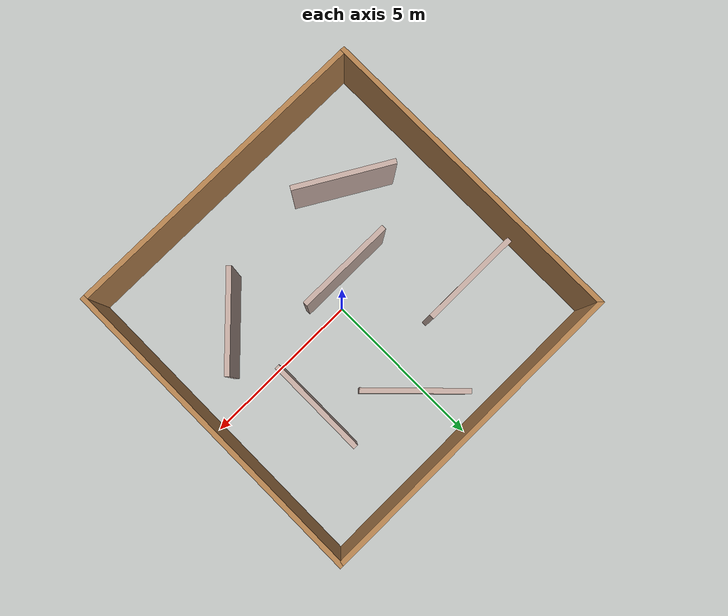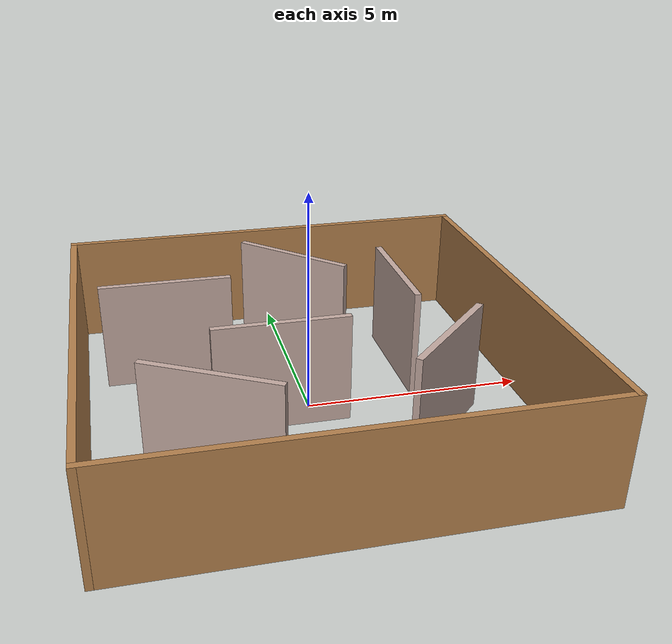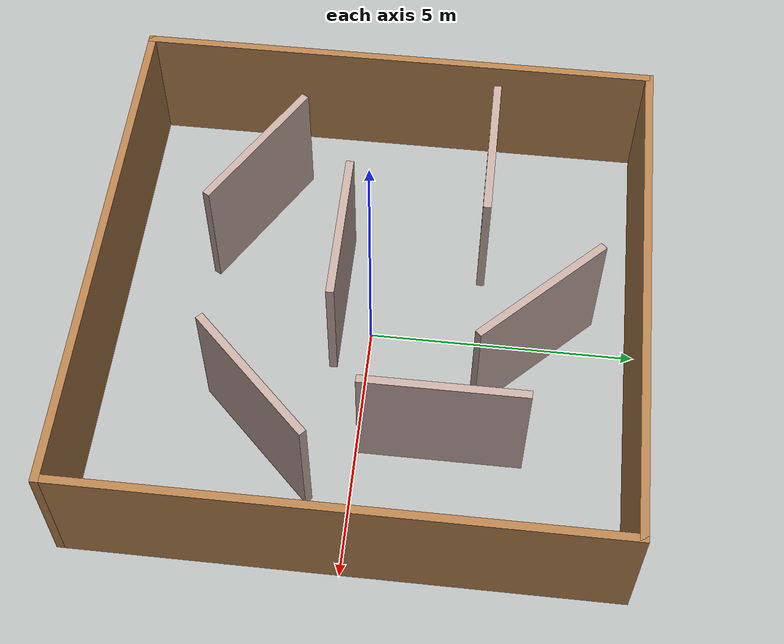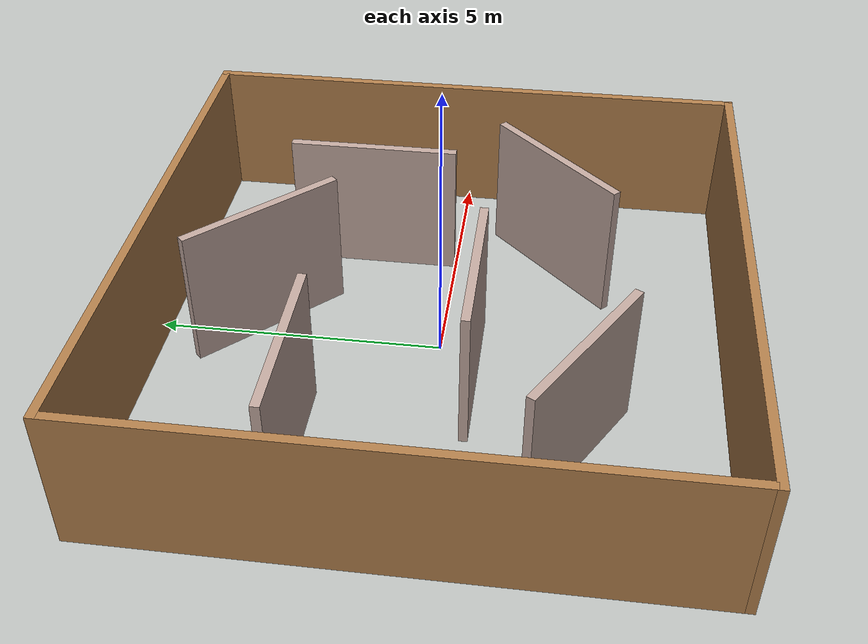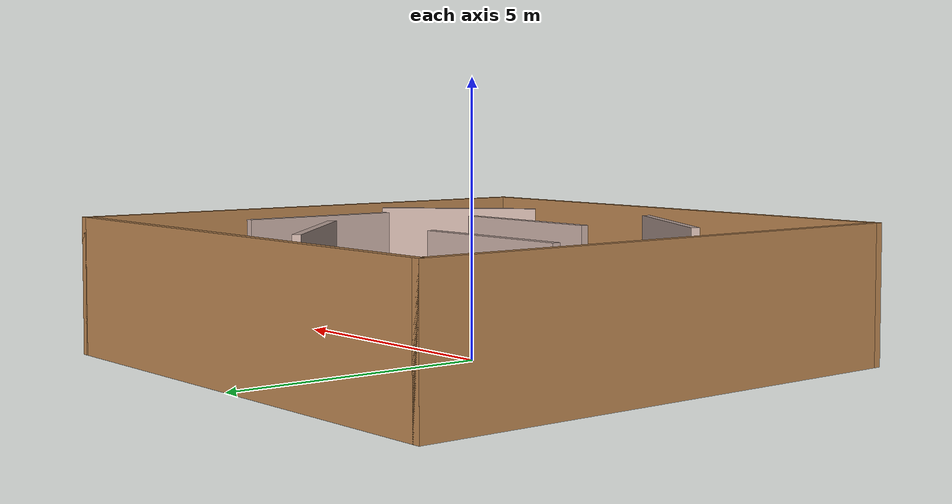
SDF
<?xml version='1.0'?>
<sdf version='1.6'>
  <model name='MazebyMe'>
    <link name='Wall_11'>
      <pose frame=''>0 -4.925 0 0 -0 3.14159</pose>
      <self_collide>0</self_collide>
      <enable_wind>0</enable_wind>
      <kinematic>0</kinematic>
      <visual name='Wall_11_Visual'>
        <pose frame=''>0 0 1.25 0 -0 0</pose>
        <geometry>
          <box>
            <size>10 0.15 2.5</size>
          </box>
        </geometry>
        <material>
          <script>
            <uri>file://media/materials/scripts/gazebo.material</uri>
            <name>Gazebo/Wood</name>
          </script>
          <ambient>1 1 1 1</ambient>
          <shader type='pixel'/>
        </material>
        <meta>
          <layer>0</layer>
        </meta>
        <transparency>0</transparency>
        <cast_shadows>1</cast_shadows>
      </visual>
      <collision name='Wall_11_Collision'>
        <laser_retro>0</laser_retro>
        <max_contacts>10</max_contacts>
        <pose frame=''>0 0 1.25 0 -0 0</pose>
        <geometry>
          <box>
            <size>10 0.15 2.5</size>
          </box>
        </geometry>
        <surface>
          <friction>
            <ode>
              <mu>1</mu>
              <mu2>1</mu2>
              <fdir1>0 0 0</fdir1>
              <slip1>0</slip1>
              <slip2>0</slip2>
            </ode>
            <torsional>
              <coefficient>1</coefficient>
              <patch_radius>0</patch_radius>
              <surface_radius>0</surface_radius>
              <use_patch_radius>1</use_patch_radius>
              <ode>
                <slip>0</slip>
              </ode>
            </torsional>
          </friction>
          <bounce>
            <restitution_coefficient>0</restitution_coefficient>
            <threshold>1e+06</threshold>
          </bounce>
          <contact>
            <collide_without_contact>0</collide_without_contact>
            <collide_without_contact_bitmask>1</collide_without_contact_bitmask>
            <collide_bitmask>1</collide_bitmask>
            <ode>
              <soft_cfm>0</soft_cfm>
              <soft_erp>0.2</soft_erp>
              <kp>1e+13</kp>
              <kd>1</kd>
              <max_vel>0.01</max_vel>
              <min_depth>0</min_depth>
            </ode>
            <bullet>
              <split_impulse>1</split_impulse>
              <split_impulse_penetration_threshold>-0.01</split_impulse_penetration_threshold>
              <soft_cfm>0</soft_cfm>
              <soft_erp>0.2</soft_erp>
              <kp>1e+13</kp>
              <kd>1</kd>
            </bullet>
          </contact>
        </surface>
      </collision>
    </link>
    <link name='Wall_12'>
      <pose frame=''>-4.925 0 0 0 -0 1.5708</pose>
      <self_collide>0</self_collide>
      <enable_wind>0</enable_wind>
      <kinematic>0</kinematic>
      <visual name='Wall_12_Visual'>
        <pose frame=''>0 0 1.25 0 -0 0</pose>
        <geometry>
          <box>
            <size>10 0.15 2.5</size>
          </box>
        </geometry>
        <material>
          <script>
            <uri>file://media/materials/scripts/gazebo.material</uri>
            <name>Gazebo/Wood</name>
          </script>
          <ambient>1 1 1 1</ambient>
          <shader type='pixel'/>
        </material>
        <meta>
          <layer>0</layer>
        </meta>
        <transparency>0</transparency>
        <cast_shadows>1</cast_shadows>
      </visual>
      <collision name='Wall_12_Collision'>
        <laser_retro>0</laser_retro>
        <max_contacts>10</max_contacts>
        <pose frame=''>0 0 1.25 0 -0 0</pose>
        <geometry>
          <box>
            <size>10 0.15 2.5</size>
          </box>
        </geometry>
        <surface>
          <friction>
            <ode>
              <mu>1</mu>
              <mu2>1</mu2>
              <fdir1>0 0 0</fdir1>
              <slip1>0</slip1>
              <slip2>0</slip2>
            </ode>
            <torsional>
              <coefficient>1</coefficient>
              <patch_radius>0</patch_radius>
              <surface_radius>0</surface_radius>
              <use_patch_radius>1</use_patch_radius>
              <ode>
                <slip>0</slip>
              </ode>
            </torsional>
          </friction>
          <bounce>
            <restitution_coefficient>0</restitution_coefficient>
            <threshold>1e+06</threshold>
          </bounce>
          <contact>
            <collide_without_contact>0</collide_without_contact>
            <collide_without_contact_bitmask>1</collide_without_contact_bitmask>
            <collide_bitmask>1</collide_bitmask>
            <ode>
              <soft_cfm>0</soft_cfm>
              <soft_erp>0.2</soft_erp>
              <kp>1e+13</kp>
              <kd>1</kd>
              <max_vel>0.01</max_vel>
              <min_depth>0</min_depth>
            </ode>
            <bullet>
              <split_impulse>1</split_impulse>
              <split_impulse_penetration_threshold>-0.01</split_impulse_penetration_threshold>
              <soft_cfm>0</soft_cfm>
              <soft_erp>0.2</soft_erp>
              <kp>1e+13</kp>
              <kd>1</kd>
            </bullet>
          </contact>
        </surface>
      </collision>
    </link>
    <link name='Wall_14'>
      <pose frame=''>-2.89619 1.99801 0 0 -0 0</pose>
      <self_collide>0</self_collide>
      <enable_wind>0</enable_wind>
      <kinematic>0</kinematic>
      <visual name='Wall_14_Visual'>
        <pose frame=''>0 0 1.25 0 -0 0</pose>
        <geometry>
          <box>
            <size>3 0.15 2.5</size>
          </box>
        </geometry>
        <material>
          <script>
            <uri>file://media/materials/scripts/gazebo.material</uri>
            <name>Gazebo/Grey</name>
          </script>
          <ambient>0.760784 0.662745 0.627451 1</ambient>
          <shader type='pixel'/>
        </material>
        <meta>
          <layer>0</layer>
        </meta>
        <transparency>0</transparency>
        <cast_shadows>1</cast_shadows>
      </visual>
      <collision name='Wall_14_Collision'>
        <laser_retro>0</laser_retro>
        <max_contacts>10</max_contacts>
        <pose frame=''>0 0 1.25 0 -0 0</pose>
        <geometry>
          <box>
            <size>3 0.15 2.5</size>
          </box>
        </geometry>
        <surface>
          <friction>
            <ode>
              <mu>1</mu>
              <mu2>1</mu2>
              <fdir1>0 0 0</fdir1>
              <slip1>0</slip1>
              <slip2>0</slip2>
            </ode>
            <torsional>
              <coefficient>1</coefficient>
              <patch_radius>0</patch_radius>
              <surface_radius>0</surface_radius>
              <use_patch_radius>1</use_patch_radius>
              <ode>
                <slip>0</slip>
              </ode>
            </torsional>
          </friction>
          <bounce>
            <restitution_coefficient>0</restitution_coefficient>
            <threshold>1e+06</threshold>
          </bounce>
          <contact>
            <collide_without_contact>0</collide_without_contact>
            <collide_without_contact_bitmask>1</collide_without_contact_bitmask>
            <collide_bitmask>1</collide_bitmask>
            <ode>
              <soft_cfm>0</soft_cfm>
              <soft_erp>0.2</soft_erp>
              <kp>1e+13</kp>
              <kd>1</kd>
              <max_vel>0.01</max_vel>
              <min_depth>0</min_depth>
            </ode>
            <bullet>
              <split_impulse>1</split_impulse>
              <split_impulse_penetration_threshold>-0.01</split_impulse_penetration_threshold>
              <soft_cfm>0</soft_cfm>
              <soft_erp>0.2</soft_erp>
              <kp>1e+13</kp>
              <kd>1</kd>
            </bullet>
          </contact>
        </surface>
      </collision>
    </link>
    <link name='Wall_16'>
      <pose frame=''>2.48847 1.53062 0 0 0 -1.5708</pose>
      <self_collide>0</self_collide>
      <enable_wind>0</enable_wind>
      <kinematic>0</kinematic>
      <visual name='Wall_16_Visual'>
        <pose frame=''>0 0 1.25 0 -0 0</pose>
        <geometry>
          <box>
            <size>3 0.15 2.5</size>
          </box>
        </geometry>
        <material>
          <script>
            <uri>file://media/materials/scripts/gazebo.material</uri>
            <name>Gazebo/Grey</name>
          </script>
          <ambient>0.760784 0.662745 0.627451 1</ambient>
          <shader type='pixel'/>
        </material>
        <meta>
          <layer>0</layer>
        </meta>
        <transparency>0</transparency>
        <cast_shadows>1</cast_shadows>
      </visual>
      <collision name='Wall_16_Collision'>
        <laser_retro>0</laser_retro>
        <max_contacts>10</max_contacts>
        <pose frame=''>0 0 1.25 0 -0 0</pose>
        <geometry>
          <box>
            <size>3 0.15 2.5</size>
          </box>
        </geometry>
        <surface>
          <friction>
            <ode>
              <mu>1</mu>
              <mu2>1</mu2>
              <fdir1>0 0 0</fdir1>
              <slip1>0</slip1>
              <slip2>0</slip2>
            </ode>
            <torsional>
              <coefficient>1</coefficient>
              <patch_radius>0</patch_radius>
              <surface_radius>0</surface_radius>
              <use_patch_radius>1</use_patch_radius>
              <ode>
                <slip>0</slip>
              </ode>
            </torsional>
          </friction>
          <bounce>
            <restitution_coefficient>0</restitution_coefficient>
            <threshold>1e+06</threshold>
          </bounce>
          <contact>
            <collide_without_contact>0</collide_without_contact>
            <collide_without_contact_bitmask>1</collide_without_contact_bitmask>
            <collide_bitmask>1</collide_bitmask>
            <ode>
              <soft_cfm>0</soft_cfm>
              <soft_erp>0.2</soft_erp>
              <kp>1e+13</kp>
              <kd>1</kd>
              <max_vel>0.01</max_vel>
              <min_depth>0</min_depth>
            </ode>
            <bullet>
              <split_impulse>1</split_impulse>
              <split_impulse_penetration_threshold>-0.01</split_impulse_penetration_threshold>
              <soft_cfm>0</soft_cfm>
              <soft_erp>0.2</soft_erp>
              <kp>1e+13</kp>
              <kd>1</kd>
            </bullet>
          </contact>
        </surface>
      </collision>
    </link>
    <link name='Wall_18'>
      <pose frame=''>-0.714969 -0.635407 0 0 -0 0</pose>
      <self_collide>0</self_collide>
      <enable_wind>0</enable_wind>
      <kinematic>0</kinematic>
      <visual name='Wall_18_Visual'>
        <pose frame=''>0 0 1.25 0 -0 0</pose>
        <geometry>
          <box>
            <size>3 0.15 2.5</size>
          </box>
        </geometry>
        <material>
          <script>
            <uri>file://media/materials/scripts/gazebo.material</uri>
            <name>Gazebo/Grey</name>
          </script>
          <ambient>0.760784 0.662745 0.627451 1</ambient>
          <shader type='pixel'/>
        </material>
        <meta>
          <layer>0</layer>
        </meta>
        <transparency>0</transparency>
        <cast_shadows>1</cast_shadows>
      </visual>
      <collision name='Wall_18_Collision'>
        <laser_retro>0</laser_retro>
        <max_contacts>10</max_contacts>
        <pose frame=''>0 0 1.25 0 -0 0</pose>
        <geometry>
          <box>
            <size>3 0.15 2.5</size>
          </box>
        </geometry>
        <surface>
          <friction>
            <ode>
              <mu>1</mu>
              <mu2>1</mu2>
              <fdir1>0 0 0</fdir1>
              <slip1>0</slip1>
              <slip2>0</slip2>
            </ode>
            <torsional>
              <coefficient>1</coefficient>
              <patch_radius>0</patch_radius>
              <surface_radius>0</surface_radius>
              <use_patch_radius>1</use_patch_radius>
              <ode>
                <slip>0</slip>
              </ode>
            </torsional>
          </friction>
          <bounce>
            <restitution_coefficient>0</restitution_coefficient>
            <threshold>1e+06</threshold>
          </bounce>
          <contact>
            <collide_without_contact>0</collide_without_contact>
            <collide_without_contact_bitmask>1</collide_without_contact_bitmask>
            <collide_bitmask>1</collide_bitmask>
            <ode>
              <soft_cfm>0</soft_cfm>
              <soft_erp>0.2</soft_erp>
              <kp>1e+13</kp>
              <kd>1</kd>
              <max_vel>0.01</max_vel>
              <min_depth>0</min_depth>
            </ode>
            <bullet>
              <split_impulse>1</split_impulse>
              <split_impulse_penetration_threshold>-0.01</split_impulse_penetration_threshold>
              <soft_cfm>0</soft_cfm>
              <soft_erp>0.2</soft_erp>
              <kp>1e+13</kp>
              <kd>1</kd>
            </bullet>
          </contact>
        </surface>
      </collision>
    </link>
    <link name='Wall_20'>
      <pose frame=''>-2.44869 -2.43852 0 0 0 -0.523599</pose>
      <self_collide>0</self_collide>
      <enable_wind>0</enable_wind>
      <kinematic>0</kinematic>
      <visual name='Wall_20_Visual'>
        <pose frame=''>0 0 1.25 0 -0 0</pose>
        <geometry>
          <box>
            <size>3 0.15 2.5</size>
          </box>
        </geometry>
        <material>
          <script>
            <uri>file://media/materials/scripts/gazebo.material</uri>
            <name>Gazebo/Grey</name>
          </script>
          <ambient>0.760784 0.662745 0.627451 1</ambient>
          <shader type='pixel'/>
        </material>
        <meta>
          <layer>0</layer>
        </meta>
        <transparency>0</transparency>
        <cast_shadows>1</cast_shadows>
      </visual>
      <collision name='Wall_20_Collision'>
        <laser_retro>0</laser_retro>
        <max_contacts>10</max_contacts>
        <pose frame=''>0 0 1.25 0 -0 0</pose>
        <geometry>
          <box>
            <size>3 0.15 2.5</size>
          </box>
        </geometry>
        <surface>
          <friction>
            <ode>
              <mu>1</mu>
              <mu2>1</mu2>
              <fdir1>0 0 0</fdir1>
              <slip1>0</slip1>
              <slip2>0</slip2>
            </ode>
            <torsional>
              <coefficient>1</coefficient>
              <patch_radius>0</patch_radius>
              <surface_radius>0</surface_radius>
              <use_patch_radius>1</use_patch_radius>
              <ode>
                <slip>0</slip>
              </ode>
            </torsional>
          </friction>
          <bounce>
            <restitution_coefficient>0</restitution_coefficient>
            <threshold>1e+06</threshold>
          </bounce>
          <contact>
            <collide_without_contact>0</collide_without_contact>
            <collide_without_contact_bitmask>1</collide_without_contact_bitmask>
            <collide_bitmask>1</collide_bitmask>
            <ode>
              <soft_cfm>0</soft_cfm>
              <soft_erp>0.2</soft_erp>
              <kp>1e+13</kp>
              <kd>1</kd>
              <max_vel>0.01</max_vel>
              <min_depth>0</min_depth>
            </ode>
            <bullet>
              <split_impulse>1</split_impulse>
              <split_impulse_penetration_threshold>-0.01</split_impulse_penetration_threshold>
              <soft_cfm>0</soft_cfm>
              <soft_erp>0.2</soft_erp>
              <kp>1e+13</kp>
              <kd>1</kd>
            </bullet>
          </contact>
        </surface>
      </collision>
    </link>
    <link name='Wall_22'>
      <pose frame=''>2.57183 -1.77595 0 0 0 -2.35619</pose>
      <self_collide>0</self_collide>
      <enable_wind>0</enable_wind>
      <kinematic>0</kinematic>
      <visual name='Wall_22_Visual'>
        <pose frame=''>0 0 1.25 0 -0 0</pose>
        <geometry>
          <box>
            <size>3 0.15 2.5</size>
          </box>
        </geometry>
        <material>
          <script>
            <uri>file://media/materials/scripts/gazebo.material</uri>
            <name>Gazebo/Grey</name>
          </script>
          <ambient>0.760784 0.662745 0.627451 1</ambient>
          <shader type='pixel'/>
        </material>
        <meta>
          <layer>0</layer>
        </meta>
        <transparency>0</transparency>
        <cast_shadows>1</cast_shadows>
      </visual>
      <collision name='Wall_22_Collision'>
        <laser_retro>0</laser_retro>
        <max_contacts>10</max_contacts>
        <pose frame=''>0 0 1.25 0 -0 0</pose>
        <geometry>
          <box>
            <size>3 0.15 2.5</size>
          </box>
        </geometry>
        <surface>
          <friction>
            <ode>
              <mu>1</mu>
              <mu2>1</mu2>
              <fdir1>0 0 0</fdir1>
              <slip1>0</slip1>
              <slip2>0</slip2>
            </ode>
            <torsional>
              <coefficient>1</coefficient>
              <patch_radius>0</patch_radius>
              <surface_radius>0</surface_radius>
              <use_patch_radius>1</use_patch_radius>
              <ode>
                <slip>0</slip>
              </ode>
            </torsional>
          </friction>
          <bounce>
            <restitution_coefficient>0</restitution_coefficient>
            <threshold>1e+06</threshold>
          </bounce>
          <contact>
            <collide_without_contact>0</collide_without_contact>
            <collide_without_contact_bitmask>1</collide_without_contact_bitmask>
            <collide_bitmask>1</collide_bitmask>
            <ode>
              <soft_cfm>0</soft_cfm>
              <soft_erp>0.2</soft_erp>
              <kp>1e+13</kp>
              <kd>1</kd>
              <max_vel>0.01</max_vel>
              <min_depth>0</min_depth>
            </ode>
            <bullet>
              <split_impulse>1</split_impulse>
              <split_impulse_penetration_threshold>-0.01</split_impulse_penetration_threshold>
              <soft_cfm>0</soft_cfm>
              <soft_erp>0.2</soft_erp>
              <kp>1e+13</kp>
              <kd>1</kd>
            </bullet>
          </contact>
        </surface>
      </collision>
    </link>
    <link name='Wall_24'>
      <pose frame=''>0.304069 3.0918 0 0 0 -0.785398</pose>
      <self_collide>0</self_collide>
      <enable_wind>0</enable_wind>
      <kinematic>0</kinematic>
      <visual name='Wall_24_Visual'>
        <pose frame=''>0 0 1.25 0 -0 0</pose>
        <geometry>
          <box>
            <size>3 0.15 2.5</size>
          </box>
        </geometry>
        <material>
          <script>
            <uri>file://media/materials/scripts/gazebo.material</uri>
            <name>Gazebo/Grey</name>
          </script>
          <ambient>0.760784 0.662745 0.627451 1</ambient>
          <shader type='pixel'/>
        </material>
        <meta>
          <layer>0</layer>
        </meta>
        <transparency>0</transparency>
        <cast_shadows>1</cast_shadows>
      </visual>
      <collision name='Wall_24_Collision'>
        <laser_retro>0</laser_retro>
        <max_contacts>10</max_contacts>
        <pose frame=''>0 0 1.25 0 -0 0</pose>
        <geometry>
          <box>
            <size>3 0.15 2.5</size>
          </box>
        </geometry>
        <surface>
          <friction>
            <ode>
              <mu>1</mu>
              <mu2>1</mu2>
              <fdir1>0 0 0</fdir1>
              <slip1>0</slip1>
              <slip2>0</slip2>
            </ode>
            <torsional>
              <coefficient>1</coefficient>
              <patch_radius>0</patch_radius>
              <surface_radius>0</surface_radius>
              <use_patch_radius>1</use_patch_radius>
              <ode>
                <slip>0</slip>
              </ode>
            </torsional>
          </friction>
          <bounce>
            <restitution_coefficient>0</restitution_coefficient>
            <threshold>1e+06</threshold>
          </bounce>
          <contact>
            <collide_without_contact>0</collide_without_contact>
            <collide_without_contact_bitmask>1</collide_without_contact_bitmask>
            <collide_bitmask>1</collide_bitmask>
            <ode>
              <soft_cfm>0</soft_cfm>
              <soft_erp>0.2</soft_erp>
              <kp>1e+13</kp>
              <kd>1</kd>
              <max_vel>0.01</max_vel>
              <min_depth>0</min_depth>
            </ode>
            <bullet>
              <split_impulse>1</split_impulse>
              <split_impulse_penetration_threshold>-0.01</split_impulse_penetration_threshold>
              <soft_cfm>0</soft_cfm>
              <soft_erp>0.2</soft_erp>
              <kp>1e+13</kp>
              <kd>1</kd>
            </bullet>
          </contact>
        </surface>
      </collision>
    </link>
    <link name='Wall_8'>
      <pose frame=''>0 4.925 0 0 -0 0</pose>
      <self_collide>0</self_collide>
      <enable_wind>0</enable_wind>
      <kinematic>0</kinematic>
      <visual name='Wall_8_Visual'>
        <pose frame=''>0 0 1.25 0 -0 0</pose>
        <geometry>
          <box>
            <size>10 0.15 2.5</size>
          </box>
        </geometry>
        <material>
          <script>
            <uri>file://media/materials/scripts/gazebo.material</uri>
            <name>Gazebo/Wood</name>
          </script>
          <ambient>1 1 1 1</ambient>
          <shader type='pixel'/>
        </material>
        <meta>
          <layer>0</layer>
        </meta>
        <transparency>0</transparency>
        <cast_shadows>1</cast_shadows>
      </visual>
      <collision name='Wall_8_Collision'>
        <laser_retro>0</laser_retro>
        <max_contacts>10</max_contacts>
        <pose frame=''>0 0 1.25 0 -0 0</pose>
        <geometry>
          <box>
            <size>10 0.15 2.5</size>
          </box>
        </geometry>
        <surface>
          <friction>
            <ode>
              <mu>1</mu>
              <mu2>1</mu2>
              <fdir1>0 0 0</fdir1>
              <slip1>0</slip1>
              <slip2>0</slip2>
            </ode>
            <torsional>
              <coefficient>1</coefficient>
              <patch_radius>0</patch_radius>
              <surface_radius>0</surface_radius>
              <use_patch_radius>1</use_patch_radius>
              <ode>
                <slip>0</slip>
              </ode>
            </torsional>
          </friction>
          <bounce>
            <restitution_coefficient>0</restitution_coefficient>
            <threshold>1e+06</threshold>
          </bounce>
          <contact>
            <collide_without_contact>0</collide_without_contact>
            <collide_without_contact_bitmask>1</collide_without_contact_bitmask>
            <collide_bitmask>1</collide_bitmask>
            <ode>
              <soft_cfm>0</soft_cfm>
              <soft_erp>0.2</soft_erp>
              <kp>1e+13</kp>
              <kd>1</kd>
              <max_vel>0.01</max_vel>
              <min_depth>0</min_depth>
            </ode>
            <bullet>
              <split_impulse>1</split_impulse>
              <split_impulse_penetration_threshold>-0.01</split_impulse_penetration_threshold>
              <soft_cfm>0</soft_cfm>
              <soft_erp>0.2</soft_erp>
              <kp>1e+13</kp>
              <kd>1</kd>
            </bullet>
          </contact>
        </surface>
      </collision>
    </link>
    <link name='Wall_9'>
      <pose frame=''>4.925 0 0 0 0 -1.5708</pose>
      <self_collide>0</self_collide>
      <enable_wind>0</enable_wind>
      <kinematic>0</kinematic>
      <visual name='Wall_9_Visual'>
        <pose frame=''>0 0 1.25 0 -0 0</pose>
        <geometry>
          <box>
            <size>10 0.15 2.5</size>
          </box>
        </geometry>
        <material>
          <script>
            <uri>file://media/materials/scripts/gazebo.material</uri>
            <name>Gazebo/Wood</name>
          </script>
          <ambient>1 1 1 1</ambient>
          <shader type='pixel'/>
        </material>
        <meta>
          <layer>0</layer>
        </meta>
        <transparency>0</transparency>
        <cast_shadows>1</cast_shadows>
      </visual>
      <collision name='Wall_9_Collision'>
        <laser_retro>0</laser_retro>
        <max_contacts>10</max_contacts>
        <pose frame=''>0 0 1.25 0 -0 0</pose>
        <geometry>
          <box>
            <size>10 0.15 2.5</size>
          </box>
        </geometry>
        <surface>
          <friction>
            <ode>
              <mu>1</mu>
              <mu2>1</mu2>
              <fdir1>0 0 0</fdir1>
              <slip1>0</slip1>
              <slip2>0</slip2>
            </ode>
            <torsional>
              <coefficient>1</coefficient>
              <patch_radius>0</patch_radius>
              <surface_radius>0</surface_radius>
              <use_patch_radius>1</use_patch_radius>
              <ode>
                <slip>0</slip>
              </ode>
            </torsional>
          </friction>
          <bounce>
            <restitution_coefficient>0</restitution_coefficient>
            <threshold>1e+06</threshold>
          </bounce>
          <contact>
            <collide_without_contact>0</collide_without_contact>
            <collide_without_contact_bitmask>1</collide_without_contact_bitmask>
            <collide_bitmask>1</collide_bitmask>
            <ode>
              <soft_cfm>0</soft_cfm>
              <soft_erp>0.2</soft_erp>
              <kp>1e+13</kp>
              <kd>1</kd>
              <max_vel>0.01</max_vel>
              <min_depth>0</min_depth>
            </ode>
            <bullet>
              <split_impulse>1</split_impulse>
              <split_impulse_penetration_threshold>-0.01</split_impulse_penetration_threshold>
              <soft_cfm>0</soft_cfm>
              <soft_erp>0.2</soft_erp>
              <kp>1e+13</kp>
              <kd>1</kd>
            </bullet>
          </contact>
        </surface>
      </collision>
    </link>
    <static>1</static>
    <allow_auto_disable>1</allow_auto_disable>
  </model>
</sdf>
